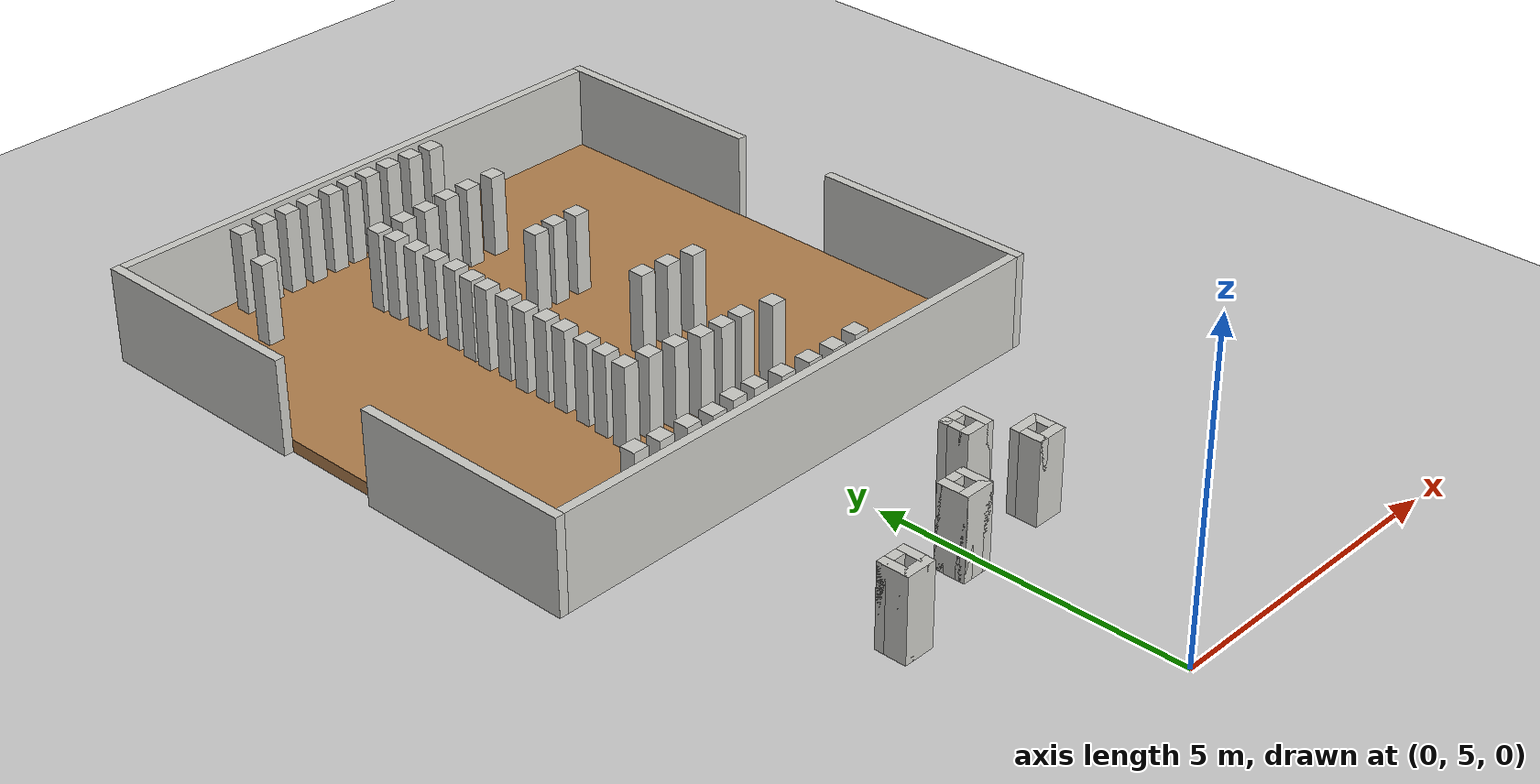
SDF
<sdf version="1.6">
 <world name="default">
  <model name="ground_plane">
   <static>1</static>
   <link name="link">
    <collision name="collision">
     <geometry><plane><normal>0 0 1</normal><size>100 100</size></plane></geometry>
     <surface><friction><ode><mu>100</mu><mu2>50</mu2></ode></friction></surface>
    </collision>
    <visual name="visual">
     <cast_shadows>0</cast_shadows>
     <geometry><plane><normal>0 0 1</normal><size>100 100</size></plane></geometry>
     <material>
      <script><uri>file://media/materials/scripts/gazebo.material</uri><name>Gazebo/Grey</name></script>
     </material>
    </visual>
   </link>
  </model>
  <model name="nerve_room_5x5ARENA_straight">
   <pose>0.031546 15.8425 0 0 -0 1.5708</pose>
   <link name="Wall_11">
    <collision name="Wall_11_Collision">
     <geometry><box><size>8.75 0.15 1.5</size></box></geometry>
     <pose>0 0 0.75 0 -0 0</pose>
    </collision>
    <visual name="Wall_11_Visual">
     <pose>0 0 0.75 0 -0 0</pose>
     <geometry><box><size>8.75 0.15 1.5</size></box></geometry>
     <material>
      <script><uri>file://media/materials/scripts/gazebo.material</uri><name>Gazebo/CeilingTiled</name></script>
      <ambient>1 0.764706 0.305882 1</ambient>
     </material>
    </visual>
    <pose>4.4489 -0.000387 0 0 0 -1.5708</pose>
   </link>
   <link name="Wall_13">
    <collision name="Wall_13_Collision">
     <geometry><box><size>8.75 0.15 1.5</size></box></geometry>
     <pose>0 0 0.75 0 -0 0</pose>
    </collision>
    <visual name="Wall_13_Visual">
     <pose>0 0 0.75 0 -0 0</pose>
     <geometry><box><size>8.75 0.15 1.5</size></box></geometry>
     <material>
      <script><uri>file://media/materials/scripts/gazebo.material</uri><name>Gazebo/CeilingTiled</name></script>
      <ambient>1 0.764706 0.305882 1</ambient>
     </material>
    </visual>
    <pose>-4.44913 0.000846 0 0 0 -1.5708</pose>
   </link>
   <link name="Wall_15">
    <collision name="Wall_15_Collision">
     <geometry><box><size>3.65 0.15 1.5</size></box></geometry>
     <pose>0 0 0.75 0 -0 0</pose>
    </collision>
    <visual name="Wall_15_Visual">
     <pose>0 0 0.75 0 -0 0</pose>
     <geometry><box><size>3.65 0.15 1.5</size></box></geometry>
     <material>
      <script><uri>file://media/materials/scripts/gazebo.material</uri><name>Gazebo/CeilingTiled</name></script>
      <ambient>1 0.764706 0.305882 1</ambient>
     </material>
    </visual>
    <pose>2.69939 -4.45071 0 0 -0 0</pose>
   </link>
   <link name="Wall_17">
    <collision name="Wall_17_Collision">
     <geometry><box><size>3.65 0.15 1.5</size></box></geometry>
     <pose>0 0 0.75 0 -0 0</pose>
    </collision>
    <visual name="Wall_17_Visual">
     <pose>0 0 0.75 0 -0 0</pose>
     <geometry><box><size>3.65 0.15 1.5</size></box></geometry>
     <material>
      <script><uri>file://media/materials/scripts/gazebo.material</uri><name>Gazebo/CeilingTiled</name></script>
      <ambient>1 0.764706 0.305882 1</ambient>
     </material>
    </visual>
    <pose>-2.69939 4.45071 0 0 -0 0</pose>
   </link>
   <link name="Wall_19">
    <collision name="Wall_19_Collision">
     <geometry><box><size>3.65 0.15 1.5</size></box></geometry>
     <pose>0 0 0.75 0 -0 0</pose>
    </collision>
    <visual name="Wall_19_Visual">
     <pose>0 0 0.75 0 -0 0</pose>
     <geometry><box><size>3.65 0.15 1.5</size></box></geometry>
     <material>
      <script><uri>file://media/materials/scripts/gazebo.material</uri><name>Gazebo/CeilingTiled</name></script>
      <ambient>1 0.764706 0.305882 1</ambient>
     </material>
    </visual>
    <pose>2.69903 4.44972 0 0 -0 0</pose>
   </link>
   <link name="Wall_21">
    <collision name="Wall_21_Collision">
     <geometry><box><size>3.65 0.15 1.5</size></box></geometry>
     <pose>0 0 0.75 0 -0 0</pose>
    </collision>
    <visual name="Wall_21_Visual">
     <pose>0 0 0.75 0 -0 0</pose>
     <geometry><box><size>3.65 0.15 1.5</size></box></geometry>
     <material>
      <script><uri>file://media/materials/scripts/gazebo.material</uri><name>Gazebo/CeilingTiled</name></script>
      <ambient>1 0.764706 0.305882 1</ambient>
     </material>
    </visual>
    <pose>-2.69904 -4.44976 0 0 -0 0</pose>
   </link>
   <link name="Wall_6">
    <collision name="Wall_6_Collision">
     <geometry><box><size>8.76 8.75 0.2</size></box></geometry>
     <pose>0 0 0.1 0 -0 0</pose>
    </collision>
    <visual name="Wall_6_Visual">
     <pose>0 0 0.1 0 -0 0</pose>
     <geometry><box><size>8.76 8.75 0.2</size></box></geometry>
     <material>
      <script><uri>file://media/materials/scripts/gazebo.material</uri><name>Gazebo/Wood</name></script>
      <ambient>1 0.764706 0.305882 1</ambient>
     </material>
    </visual>
    <pose>0.000265 -0.004129 0 0 -0 1.5708</pose>
   </link>
   <static>1</static>
  </model>
  <model name="nerve_obs_squarepillar_large_clone_9">
   <pose>0.61279 9.10345 0.2 0 -0 0</pose>
   <link name="Wall_31">
    <collision name="Wall_31_Collision">
     <geometry><box><size>0.5 0.15 1.3</size></box></geometry>
     <pose>0 0 0.65 0 -0 0</pose>
    </collision>
    <visual name="Wall_31_Visual">
     <pose>0 0 0.65 0 -0 0</pose>
     <geometry><box><size>0.5 0.15 1.3</size></box></geometry>
     <material>
      <script><uri>file://media/materials/scripts/gazebo.material</uri><name>Gazebo/CeilingTiled</name></script>
      <ambient>1 0.764706 0.305882 1</ambient>
     </material>
    </visual>
    <pose>-0.175 0 0 0 0 -1.5708</pose>
   </link>
   <link name="Wall_32">
    <collision name="Wall_32_Collision">
     <geometry><box><size>0.5 0.15 1.3</size></box></geometry>
     <pose>0 0 0.65 0 -0 0</pose>
    </collision>
    <visual name="Wall_32_Visual">
     <pose>0 0 0.65 0 -0 0</pose>
     <geometry><box><size>0.5 0.15 1.3</size></box></geometry>
     <material>
      <script><uri>file://media/materials/scripts/gazebo.material</uri><name>Gazebo/CeilingTiled</name></script>
      <ambient>1 0.764706 0.305882 1</ambient>
     </material>
    </visual>
    <pose>0 -0.175 0 0 -0 0</pose>
   </link>
   <link name="Wall_33">
    <collision name="Wall_33_Collision">
     <geometry><box><size>0.5 0.15 1.3</size></box></geometry>
     <pose>0 0 0.65 0 -0 0</pose>
    </collision>
    <visual name="Wall_33_Visual">
     <pose>0 0 0.65 0 -0 0</pose>
     <geometry><box><size>0.5 0.15 1.3</size></box></geometry>
     <material>
      <script><uri>file://media/materials/scripts/gazebo.material</uri><name>Gazebo/CeilingTiled</name></script>
      <ambient>1 0.764706 0.305882 1</ambient>
     </material>
    </visual>
    <pose>0.175 0 0 0 -0 1.5708</pose>
   </link>
   <link name="Wall_34">
    <collision name="Wall_34_Collision">
     <geometry><box><size>0.5 0.15 1.3</size></box></geometry>
     <pose>0 0 0.65 0 -0 0</pose>
    </collision>
    <visual name="Wall_34_Visual">
     <pose>0 0 0.65 0 -0 0</pose>
     <geometry><box><size>0.5 0.15 1.3</size></box></geometry>
     <material>
      <script><uri>file://media/materials/scripts/gazebo.material</uri><name>Gazebo/CeilingTiled</name></script>
      <ambient>1 0.764706 0.305882 1</ambient>
     </material>
    </visual>
    <pose>0 0.175 0 0 -0 3.14159</pose>
   </link>
   <static>1</static>
  </model>
  <model name="nerve_obs_squarepillar_large_clone_11">
   <pose>-2.25899 7.64009 0.2 0 -0 0</pose>
   <link name="Wall_31">
    <collision name="Wall_31_Collision">
     <geometry><box><size>0.5 0.15 1.3</size></box></geometry>
     <pose>0 0 0.65 0 -0 0</pose>
    </collision>
    <visual name="Wall_31_Visual">
     <pose>0 0 0.65 0 -0 0</pose>
     <geometry><box><size>0.5 0.15 1.3</size></box></geometry>
     <material>
      <script><uri>file://media/materials/scripts/gazebo.material</uri><name>Gazebo/CeilingTiled</name></script>
      <ambient>1 0.764706 0.305882 1</ambient>
     </material>
    </visual>
    <pose>-0.175 0 0 0 0 -1.5708</pose>
   </link>
   <link name="Wall_32">
    <collision name="Wall_32_Collision">
     <geometry><box><size>0.5 0.15 1.3</size></box></geometry>
     <pose>0 0 0.65 0 -0 0</pose>
    </collision>
    <visual name="Wall_32_Visual">
     <pose>0 0 0.65 0 -0 0</pose>
     <geometry><box><size>0.5 0.15 1.3</size></box></geometry>
     <material>
      <script><uri>file://media/materials/scripts/gazebo.material</uri><name>Gazebo/CeilingTiled</name></script>
      <ambient>1 0.764706 0.305882 1</ambient>
     </material>
    </visual>
    <pose>0 -0.175 0 0 -0 0</pose>
   </link>
   <link name="Wall_33">
    <collision name="Wall_33_Collision">
     <geometry><box><size>0.5 0.15 1.3</size></box></geometry>
     <pose>0 0 0.65 0 -0 0</pose>
    </collision>
    <visual name="Wall_33_Visual">
     <pose>0 0 0.65 0 -0 0</pose>
     <geometry><box><size>0.5 0.15 1.3</size></box></geometry>
     <material>
      <script><uri>file://media/materials/scripts/gazebo.material</uri><name>Gazebo/CeilingTiled</name></script>
      <ambient>1 0.764706 0.305882 1</ambient>
     </material>
    </visual>
    <pose>0.175 0 0 0 -0 1.5708</pose>
   </link>
   <link name="Wall_34">
    <collision name="Wall_34_Collision">
     <geometry><box><size>0.5 0.15 1.3</size></box></geometry>
     <pose>0 0 0.65 0 -0 0</pose>
    </collision>
    <visual name="Wall_34_Visual">
     <pose>0 0 0.65 0 -0 0</pose>
     <geometry><box><size>0.5 0.15 1.3</size></box></geometry>
     <material>
      <script><uri>file://media/materials/scripts/gazebo.material</uri><name>Gazebo/CeilingTiled</name></script>
      <ambient>1 0.764706 0.305882 1</ambient>
     </material>
    </visual>
    <pose>0 0.175 0 0 -0 3.14159</pose>
   </link>
   <static>1</static>
  </model>
  <model name="nerve_obs_squarepillar_large_clone_11_clone_0">
   <pose>1.10673 8.32521 0.2 0 -0 0</pose>
   <link name="Wall_31">
    <collision name="Wall_31_Collision">
     <geometry><box><size>0.5 0.15 1.3</size></box></geometry>
     <pose>0 0 0.65 0 -0 0</pose>
    </collision>
    <visual name="Wall_31_Visual">
     <pose>0 0 0.65 0 -0 0</pose>
     <geometry><box><size>0.5 0.15 1.3</size></box></geometry>
     <material>
      <script><uri>file://media/materials/scripts/gazebo.material</uri><name>Gazebo/CeilingTiled</name></script>
      <ambient>1 0.764706 0.305882 1</ambient>
     </material>
    </visual>
    <pose>-0.175 0 0 0 0 -1.5708</pose>
   </link>
   <link name="Wall_32">
    <collision name="Wall_32_Collision">
     <geometry><box><size>0.5 0.15 1.3</size></box></geometry>
     <pose>0 0 0.65 0 -0 0</pose>
    </collision>
    <visual name="Wall_32_Visual">
     <pose>0 0 0.65 0 -0 0</pose>
     <geometry><box><size>0.5 0.15 1.3</size></box></geometry>
     <material>
      <script><uri>file://media/materials/scripts/gazebo.material</uri><name>Gazebo/CeilingTiled</name></script>
      <ambient>1 0.764706 0.305882 1</ambient>
     </material>
    </visual>
    <pose>0 -0.175 0 0 -0 0</pose>
   </link>
   <link name="Wall_33">
    <collision name="Wall_33_Collision">
     <geometry><box><size>0.5 0.15 1.3</size></box></geometry>
     <pose>0 0 0.65 0 -0 0</pose>
    </collision>
    <visual name="Wall_33_Visual">
     <pose>0 0 0.65 0 -0 0</pose>
     <geometry><box><size>0.5 0.15 1.3</size></box></geometry>
     <material>
      <script><uri>file://media/materials/scripts/gazebo.material</uri><name>Gazebo/CeilingTiled</name></script>
      <ambient>1 0.764706 0.305882 1</ambient>
     </material>
    </visual>
    <pose>0.175 0 0 0 -0 1.5708</pose>
   </link>
   <link name="Wall_34">
    <collision name="Wall_34_Collision">
     <geometry><box><size>0.5 0.15 1.3</size></box></geometry>
     <pose>0 0 0.65 0 -0 0</pose>
    </collision>
    <visual name="Wall_34_Visual">
     <pose>0 0 0.65 0 -0 0</pose>
     <geometry><box><size>0.5 0.15 1.3</size></box></geometry>
     <material>
      <script><uri>file://media/materials/scripts/gazebo.material</uri><name>Gazebo/CeilingTiled</name></script>
      <ambient>1 0.764706 0.305882 1</ambient>
     </material>
    </visual>
    <pose>0 0.175 0 0 -0 3.14159</pose>
   </link>
   <static>1</static>
  </model>
  <model name="nerve_obs_squarepillar_large_clone_11_clone_1">
   <pose>-0.484465 8.20513 0.2 0 -0 0</pose>
   <link name="Wall_31">
    <collision name="Wall_31_Collision">
     <geometry><box><size>0.5 0.15 1.3</size></box></geometry>
     <pose>0 0 0.65 0 -0 0</pose>
    </collision>
    <visual name="Wall_31_Visual">
     <pose>0 0 0.65 0 -0 0</pose>
     <geometry><box><size>0.5 0.15 1.3</size></box></geometry>
     <material>
      <script><uri>file://media/materials/scripts/gazebo.material</uri><name>Gazebo/CeilingTiled</name></script>
      <ambient>1 0.764706 0.305882 1</ambient>
     </material>
    </visual>
    <pose>-0.175 0 0 0 0 -1.5708</pose>
   </link>
   <link name="Wall_32">
    <collision name="Wall_32_Collision">
     <geometry><box><size>0.5 0.15 1.3</size></box></geometry>
     <pose>0 0 0.65 0 -0 0</pose>
    </collision>
    <visual name="Wall_32_Visual">
     <pose>0 0 0.65 0 -0 0</pose>
     <geometry><box><size>0.5 0.15 1.3</size></box></geometry>
     <material>
      <script><uri>file://media/materials/scripts/gazebo.material</uri><name>Gazebo/CeilingTiled</name></script>
      <ambient>1 0.764706 0.305882 1</ambient>
     </material>
    </visual>
    <pose>0 -0.175 0 0 -0 0</pose>
   </link>
   <link name="Wall_33">
    <collision name="Wall_33_Collision">
     <geometry><box><size>0.5 0.15 1.3</size></box></geometry>
     <pose>0 0 0.65 0 -0 0</pose>
    </collision>
    <visual name="Wall_33_Visual">
     <pose>0 0 0.65 0 -0 0</pose>
     <geometry><box><size>0.5 0.15 1.3</size></box></geometry>
     <material>
      <script><uri>file://media/materials/scripts/gazebo.material</uri><name>Gazebo/CeilingTiled</name></script>
      <ambient>1 0.764706 0.305882 1</ambient>
     </material>
    </visual>
    <pose>0.175 0 0 0 -0 1.5708</pose>
   </link>
   <link name="Wall_34">
    <collision name="Wall_34_Collision">
     <geometry><box><size>0.5 0.15 1.3</size></box></geometry>
     <pose>0 0 0.65 0 -0 0</pose>
    </collision>
    <visual name="Wall_34_Visual">
     <pose>0 0 0.65 0 -0 0</pose>
     <geometry><box><size>0.5 0.15 1.3</size></box></geometry>
     <material>
      <script><uri>file://media/materials/scripts/gazebo.material</uri><name>Gazebo/CeilingTiled</name></script>
      <ambient>1 0.764706 0.305882 1</ambient>
     </material>
    </visual>
    <pose>0 0.175 0 0 -0 3.14159</pose>
   </link>
   <static>1</static>
  </model>
  <model name="nerve_obs_squarepillar_small_clone_41_clone_26">
   <pose>-2.87623 19.0107 0.2 0 -0 0</pose>
   <link name="Wall_40">
    <collision name="Wall_40_Collision">
     <geometry><box><size>0.26 0.25 1.3</size></box></geometry>
     <pose>0 0 0.65 0 -0 0</pose>
    </collision>
    <visual name="Wall_40_Visual">
     <pose>0 0 0.65 0 -0 0</pose>
     <geometry><box><size>0.26 0.25 1.3</size></box></geometry>
     <material>
      <script><uri>file://media/materials/scripts/gazebo.material</uri><name>Gazebo/CeilingTiled</name></script>
      <ambient>1 0.764706 0.305882 1</ambient>
     </material>
    </visual>
   </link>
   <static>1</static>
  </model>
  <model name="nerve_obs_squarepillar_small_clone_41_clone_29">
   <pose>-2.52256 19.9355 0.2 0 -0 0</pose>
   <link name="Wall_40">
    <collision name="Wall_40_Collision">
     <geometry><box><size>0.26 0.25 1.3</size></box></geometry>
     <pose>0 0 0.65 0 -0 0</pose>
    </collision>
    <visual name="Wall_40_Visual">
     <pose>0 0 0.65 0 -0 0</pose>
     <geometry><box><size>0.26 0.25 1.3</size></box></geometry>
     <material>
      <script><uri>file://media/materials/scripts/gazebo.material</uri><name>Gazebo/CeilingTiled</name></script>
      <ambient>1 0.764706 0.305882 1</ambient>
     </material>
    </visual>
   </link>
   <static>1</static>
  </model>
  <model name="nerve_obs_squarepillar_small_clone_41_clone_30">
   <pose>-2.1157 19.9619 0.2 0 -0 0</pose>
   <link name="Wall_40">
    <collision name="Wall_40_Collision">
     <geometry><box><size>0.26 0.25 1.3</size></box></geometry>
     <pose>0 0 0.65 0 -0 0</pose>
    </collision>
    <visual name="Wall_40_Visual">
     <pose>0 0 0.65 0 -0 0</pose>
     <geometry><box><size>0.26 0.25 1.3</size></box></geometry>
     <material>
      <script><uri>file://media/materials/scripts/gazebo.material</uri><name>Gazebo/CeilingTiled</name></script>
      <ambient>1 0.764706 0.305882 1</ambient>
     </material>
    </visual>
   </link>
   <static>1</static>
  </model>
  <model name="nerve_obs_squarepillar_small_clone_41_clone_31">
   <pose>-1.69492 19.9608 0.2 0 -0 0</pose>
   <link name="Wall_40">
    <collision name="Wall_40_Collision">
     <geometry><box><size>0.26 0.25 1.3</size></box></geometry>
     <pose>0 0 0.65 0 -0 0</pose>
    </collision>
    <visual name="Wall_40_Visual">
     <pose>0 0 0.65 0 -0 0</pose>
     <geometry><box><size>0.26 0.25 1.3</size></box></geometry>
     <material>
      <script><uri>file://media/materials/scripts/gazebo.material</uri><name>Gazebo/CeilingTiled</name></script>
      <ambient>1 0.764706 0.305882 1</ambient>
     </material>
    </visual>
   </link>
   <static>1</static>
  </model>
  <model name="nerve_obs_squarepillar_small_clone_41_clone_32">
   <pose>-1.30218 19.9591 0.2 0 -0 0</pose>
   <link name="Wall_40">
    <collision name="Wall_40_Collision">
     <geometry><box><size>0.26 0.25 1.3</size></box></geometry>
     <pose>0 0 0.65 0 -0 0</pose>
    </collision>
    <visual name="Wall_40_Visual">
     <pose>0 0 0.65 0 -0 0</pose>
     <geometry><box><size>0.26 0.25 1.3</size></box></geometry>
     <material>
      <script><uri>file://media/materials/scripts/gazebo.material</uri><name>Gazebo/CeilingTiled</name></script>
      <ambient>1 0.764706 0.305882 1</ambient>
     </material>
    </visual>
   </link>
   <static>1</static>
  </model>
  <model name="nerve_obs_squarepillar_small_clone_41_clone_33">
   <pose>-0.881356 19.9717 0.2 0 -0 0</pose>
   <link name="Wall_40">
    <collision name="Wall_40_Collision">
     <geometry><box><size>0.26 0.25 1.3</size></box></geometry>
     <pose>0 0 0.65 0 -0 0</pose>
    </collision>
    <visual name="Wall_40_Visual">
     <pose>0 0 0.65 0 -0 0</pose>
     <geometry><box><size>0.26 0.25 1.3</size></box></geometry>
     <material>
      <script><uri>file://media/materials/scripts/gazebo.material</uri><name>Gazebo/CeilingTiled</name></script>
      <ambient>1 0.764706 0.305882 1</ambient>
     </material>
    </visual>
   </link>
   <static>1</static>
  </model>
  <model name="nerve_obs_squarepillar_small_clone_41_clone_34">
   <pose>-0.516621 19.9842 0.2 0 -0 0</pose>
   <link name="Wall_40">
    <collision name="Wall_40_Collision">
     <geometry><box><size>0.26 0.25 1.3</size></box></geometry>
     <pose>0 0 0.65 0 -0 0</pose>
    </collision>
    <visual name="Wall_40_Visual">
     <pose>0 0 0.65 0 -0 0</pose>
     <geometry><box><size>0.26 0.25 1.3</size></box></geometry>
     <material>
      <script><uri>file://media/materials/scripts/gazebo.material</uri><name>Gazebo/CeilingTiled</name></script>
      <ambient>1 0.764706 0.305882 1</ambient>
     </material>
    </visual>
   </link>
   <static>1</static>
  </model>
  <model name="nerve_obs_squarepillar_small_clone_41_clone_35">
   <pose>-0.151895 19.9971 0.2 0 -0 0</pose>
   <link name="Wall_40">
    <collision name="Wall_40_Collision">
     <geometry><box><size>0.26 0.25 1.3</size></box></geometry>
     <pose>0 0 0.65 0 -0 0</pose>
    </collision>
    <visual name="Wall_40_Visual">
     <pose>0 0 0.65 0 -0 0</pose>
     <geometry><box><size>0.26 0.25 1.3</size></box></geometry>
     <material>
      <script><uri>file://media/materials/scripts/gazebo.material</uri><name>Gazebo/CeilingTiled</name></script>
      <ambient>1 0.764706 0.305882 1</ambient>
     </material>
    </visual>
   </link>
   <static>1</static>
  </model>
  <model name="nerve_obs_squarepillar_small_clone_41_clone_36">
   <pose>0.254913 20.0101 0.2 0 -0 0</pose>
   <link name="Wall_40">
    <collision name="Wall_40_Collision">
     <geometry><box><size>0.26 0.25 1.3</size></box></geometry>
     <pose>0 0 0.65 0 -0 0</pose>
    </collision>
    <visual name="Wall_40_Visual">
     <pose>0 0 0.65 0 -0 0</pose>
     <geometry><box><size>0.26 0.25 1.3</size></box></geometry>
     <material>
      <script><uri>file://media/materials/scripts/gazebo.material</uri><name>Gazebo/CeilingTiled</name></script>
      <ambient>1 0.764706 0.305882 1</ambient>
     </material>
    </visual>
   </link>
   <static>1</static>
  </model>
  <model name="nerve_obs_squarepillar_small_clone_41_clone_37">
   <pose>0.675647 19.9947 0.2 0 -0 0</pose>
   <link name="Wall_40">
    <collision name="Wall_40_Collision">
     <geometry><box><size>0.26 0.25 1.3</size></box></geometry>
     <pose>0 0 0.65 0 -0 0</pose>
    </collision>
    <visual name="Wall_40_Visual">
     <pose>0 0 0.65 0 -0 0</pose>
     <geometry><box><size>0.26 0.25 1.3</size></box></geometry>
     <material>
      <script><uri>file://media/materials/scripts/gazebo.material</uri><name>Gazebo/CeilingTiled</name></script>
      <ambient>1 0.764706 0.305882 1</ambient>
     </material>
    </visual>
   </link>
   <static>1</static>
  </model>
  <model name="nerve_obs_squarepillar_small_clone_41_clone_38">
   <pose>1.06834 19.9792 0.2 0 -0 0</pose>
   <link name="Wall_40">
    <collision name="Wall_40_Collision">
     <geometry><box><size>0.26 0.25 1.3</size></box></geometry>
     <pose>0 0 0.65 0 -0 0</pose>
    </collision>
    <visual name="Wall_40_Visual">
     <pose>0 0 0.65 0 -0 0</pose>
     <geometry><box><size>0.26 0.25 1.3</size></box></geometry>
     <material>
      <script><uri>file://media/materials/scripts/gazebo.material</uri><name>Gazebo/CeilingTiled</name></script>
      <ambient>1 0.764706 0.305882 1</ambient>
     </material>
    </visual>
   </link>
   <static>1</static>
  </model>
  <model name="nerve_obs_squarepillar_small_clone_41_clone_61">
   <pose>-2.70302 11.7743 0.2 0 -0 0</pose>
   <link name="Wall_40">
    <collision name="Wall_40_Collision">
     <geometry><box><size>0.26 0.25 1.3</size></box></geometry>
     <pose>0 0 0.65 0 -0 0</pose>
    </collision>
    <visual name="Wall_40_Visual">
     <pose>0 0 0.65 0 -0 0</pose>
     <geometry><box><size>0.26 0.25 1.3</size></box></geometry>
     <material>
      <script><uri>file://media/materials/scripts/gazebo.material</uri><name>Gazebo/CeilingTiled</name></script>
      <ambient>1 0.764706 0.305882 1</ambient>
     </material>
    </visual>
   </link>
   <static>1</static>
  </model>
  <model name="nerve_obs_squarepillar_small_clone_41_clone_62">
   <pose>-2.28259 11.7309 0.2 0 -0 0</pose>
   <link name="Wall_40">
    <collision name="Wall_40_Collision">
     <geometry><box><size>0.26 0.25 1.3</size></box></geometry>
     <pose>0 0 0.65 0 -0 0</pose>
    </collision>
    <visual name="Wall_40_Visual">
     <pose>0 0 0.65 0 -0 0</pose>
     <geometry><box><size>0.26 0.25 1.3</size></box></geometry>
     <material>
      <script><uri>file://media/materials/scripts/gazebo.material</uri><name>Gazebo/CeilingTiled</name></script>
      <ambient>1 0.764706 0.305882 1</ambient>
     </material>
    </visual>
   </link>
   <static>1</static>
  </model>
  <model name="nerve_obs_squarepillar_small_clone_41_clone_63">
   <pose>-1.82005 11.7011 0.2 0 -0 0</pose>
   <link name="Wall_40">
    <collision name="Wall_40_Collision">
     <geometry><box><size>0.26 0.25 1.3</size></box></geometry>
     <pose>0 0 0.65 0 -0 0</pose>
    </collision>
    <visual name="Wall_40_Visual">
     <pose>0 0 0.65 0 -0 0</pose>
     <geometry><box><size>0.26 0.25 1.3</size></box></geometry>
     <material>
      <script><uri>file://media/materials/scripts/gazebo.material</uri><name>Gazebo/CeilingTiled</name></script>
      <ambient>1 0.764706 0.305882 1</ambient>
     </material>
    </visual>
   </link>
   <static>1</static>
  </model>
  <model name="nerve_obs_squarepillar_small_clone_41_clone_64">
   <pose>-1.3996 11.658 0.2 0 -0 0</pose>
   <link name="Wall_40">
    <collision name="Wall_40_Collision">
     <geometry><box><size>0.26 0.25 1.3</size></box></geometry>
     <pose>0 0 0.65 0 -0 0</pose>
    </collision>
    <visual name="Wall_40_Visual">
     <pose>0 0 0.65 0 -0 0</pose>
     <geometry><box><size>0.26 0.25 1.3</size></box></geometry>
     <material>
      <script><uri>file://media/materials/scripts/gazebo.material</uri><name>Gazebo/CeilingTiled</name></script>
      <ambient>1 0.764706 0.305882 1</ambient>
     </material>
    </visual>
   </link>
   <static>1</static>
  </model>
  <model name="nerve_obs_squarepillar_small_clone_41_clone_65">
   <pose>-0.950379 11.7263 0.2 0 -0 0</pose>
   <link name="Wall_40">
    <collision name="Wall_40_Collision">
     <geometry><box><size>0.26 0.25 1.3</size></box></geometry>
     <pose>0 0 0.65 0 -0 0</pose>
    </collision>
    <visual name="Wall_40_Visual">
     <pose>0 0 0.65 0 -0 0</pose>
     <geometry><box><size>0.26 0.25 1.3</size></box></geometry>
     <material>
      <script><uri>file://media/materials/scripts/gazebo.material</uri><name>Gazebo/CeilingTiled</name></script>
      <ambient>1 0.764706 0.305882 1</ambient>
     </material>
    </visual>
   </link>
   <static>1</static>
  </model>
  <model name="nerve_obs_squarepillar_small_clone_41_clone_66">
   <pose>-0.543823 11.7247 0.2 0 -0 0</pose>
   <link name="Wall_40">
    <collision name="Wall_40_Collision">
     <geometry><box><size>0.26 0.25 1.3</size></box></geometry>
     <pose>0 0 0.65 0 -0 0</pose>
    </collision>
    <visual name="Wall_40_Visual">
     <pose>0 0 0.65 0 -0 0</pose>
     <geometry><box><size>0.26 0.25 1.3</size></box></geometry>
     <material>
      <script><uri>file://media/materials/scripts/gazebo.material</uri><name>Gazebo/CeilingTiled</name></script>
      <ambient>1 0.764706 0.305882 1</ambient>
     </material>
    </visual>
   </link>
   <static>1</static>
  </model>
  <model name="nerve_obs_squarepillar_small_clone_41_clone_67">
   <pose>-0.081385 11.6672 0.2 0 -0 0</pose>
   <link name="Wall_40">
    <collision name="Wall_40_Collision">
     <geometry><box><size>0.26 0.25 1.3</size></box></geometry>
     <pose>0 0 0.65 0 -0 0</pose>
    </collision>
    <visual name="Wall_40_Visual">
     <pose>0 0 0.65 0 -0 0</pose>
     <geometry><box><size>0.26 0.25 1.3</size></box></geometry>
     <material>
      <script><uri>file://media/materials/scripts/gazebo.material</uri><name>Gazebo/CeilingTiled</name></script>
      <ambient>1 0.764706 0.305882 1</ambient>
     </material>
    </visual>
   </link>
   <static>1</static>
  </model>
  <model name="nerve_obs_squarepillar_small_clone_41_clone_68">
   <pose>0.423245 11.6514 0.2 0 -0 0</pose>
   <link name="Wall_40">
    <collision name="Wall_40_Collision">
     <geometry><box><size>0.26 0.25 1.3</size></box></geometry>
     <pose>0 0 0.65 0 -0 0</pose>
    </collision>
    <visual name="Wall_40_Visual">
     <pose>0 0 0.65 0 -0 0</pose>
     <geometry><box><size>0.26 0.25 1.3</size></box></geometry>
     <material>
      <script><uri>file://media/materials/scripts/gazebo.material</uri><name>Gazebo/CeilingTiled</name></script>
      <ambient>1 0.764706 0.305882 1</ambient>
     </material>
    </visual>
   </link>
   <static>1</static>
  </model>
  <model name="nerve_obs_squarepillar_small_clone_41_clone_69">
   <pose>0.885823 11.6358 0.2 0 -0 0</pose>
   <link name="Wall_40">
    <collision name="Wall_40_Collision">
     <geometry><box><size>0.26 0.25 1.3</size></box></geometry>
     <pose>0 0 0.65 0 -0 0</pose>
    </collision>
    <visual name="Wall_40_Visual">
     <pose>0 0 0.65 0 -0 0</pose>
     <geometry><box><size>0.26 0.25 1.3</size></box></geometry>
     <material>
      <script><uri>file://media/materials/scripts/gazebo.material</uri><name>Gazebo/CeilingTiled</name></script>
      <ambient>1 0.764706 0.305882 1</ambient>
     </material>
    </visual>
   </link>
   <static>1</static>
  </model>
  <model name="nerve_obs_squarepillar_small_clone_41_clone_70">
   <pose>1.37666 11.6761 0.2 0 -0 0</pose>
   <link name="Wall_40">
    <collision name="Wall_40_Collision">
     <geometry><box><size>0.26 0.25 1.3</size></box></geometry>
     <pose>0 0 0.65 0 -0 0</pose>
    </collision>
    <visual name="Wall_40_Visual">
     <pose>0 0 0.65 0 -0 0</pose>
     <geometry><box><size>0.26 0.25 1.3</size></box></geometry>
     <material>
      <script><uri>file://media/materials/scripts/gazebo.material</uri><name>Gazebo/CeilingTiled</name></script>
      <ambient>1 0.764706 0.305882 1</ambient>
     </material>
    </visual>
   </link>
   <static>1</static>
  </model>
  <model name="nerve_obs_squarepillar_small_clone_41_clone_78">
   <pose>-1.12896 16.9287 0.2 0 -0 0</pose>
   <link name="Wall_40">
    <collision name="Wall_40_Collision">
     <geometry><box><size>0.26 0.25 1.3</size></box></geometry>
     <pose>0 0 0.65 0 -0 0</pose>
    </collision>
    <visual name="Wall_40_Visual">
     <pose>0 0 0.65 0 -0 0</pose>
     <geometry><box><size>0.26 0.25 1.3</size></box></geometry>
     <material>
      <script><uri>file://media/materials/scripts/gazebo.material</uri><name>Gazebo/CeilingTiled</name></script>
      <ambient>1 0.764706 0.305882 1</ambient>
     </material>
    </visual>
   </link>
   <static>1</static>
  </model>
  <model name="nerve_obs_squarepillar_small_clone_41_clone_79">
   <pose>-1.12755 17.3495 0.2 0 -0 0</pose>
   <link name="Wall_40">
    <collision name="Wall_40_Collision">
     <geometry><box><size>0.26 0.25 1.3</size></box></geometry>
     <pose>0 0 0.65 0 -0 0</pose>
    </collision>
    <visual name="Wall_40_Visual">
     <pose>0 0 0.65 0 -0 0</pose>
     <geometry><box><size>0.26 0.25 1.3</size></box></geometry>
     <material>
      <script><uri>file://media/materials/scripts/gazebo.material</uri><name>Gazebo/CeilingTiled</name></script>
      <ambient>1 0.764706 0.305882 1</ambient>
     </material>
    </visual>
   </link>
   <static>1</static>
  </model>
  <model name="nerve_obs_squarepillar_small_clone_41_clone_80">
   <pose>-1.14021 17.7562 0.2 0 -0 0</pose>
   <link name="Wall_40">
    <collision name="Wall_40_Collision">
     <geometry><box><size>0.26 0.25 1.3</size></box></geometry>
     <pose>0 0 0.65 0 -0 0</pose>
    </collision>
    <visual name="Wall_40_Visual">
     <pose>0 0 0.65 0 -0 0</pose>
     <geometry><box><size>0.26 0.25 1.3</size></box></geometry>
     <material>
      <script><uri>file://media/materials/scripts/gazebo.material</uri><name>Gazebo/CeilingTiled</name></script>
      <ambient>1 0.764706 0.305882 1</ambient>
     </material>
    </visual>
   </link>
   <static>1</static>
  </model>
  <model name="nerve_obs_squarepillar_small_clone_41_clone_81">
   <pose>-1.13874 18.191 0.2 0 -0 0</pose>
   <link name="Wall_40">
    <collision name="Wall_40_Collision">
     <geometry><box><size>0.26 0.25 1.3</size></box></geometry>
     <pose>0 0 0.65 0 -0 0</pose>
    </collision>
    <visual name="Wall_40_Visual">
     <pose>0 0 0.65 0 -0 0</pose>
     <geometry><box><size>0.26 0.25 1.3</size></box></geometry>
     <material>
      <script><uri>file://media/materials/scripts/gazebo.material</uri><name>Gazebo/CeilingTiled</name></script>
      <ambient>1 0.764706 0.305882 1</ambient>
     </material>
    </visual>
   </link>
   <static>1</static>
  </model>
  <model name="nerve_obs_squarepillar_small_clone_41_clone_82">
   <pose>-1.15159 18.5418 0.2 0 -0 0</pose>
   <link name="Wall_40">
    <collision name="Wall_40_Collision">
     <geometry><box><size>0.26 0.25 1.3</size></box></geometry>
     <pose>0 0 0.65 0 -0 0</pose>
    </collision>
    <visual name="Wall_40_Visual">
     <pose>0 0 0.65 0 -0 0</pose>
     <geometry><box><size>0.26 0.25 1.3</size></box></geometry>
     <material>
      <script><uri>file://media/materials/scripts/gazebo.material</uri><name>Gazebo/CeilingTiled</name></script>
      <ambient>1 0.764706 0.305882 1</ambient>
     </material>
    </visual>
   </link>
   <static>1</static>
  </model>
  <model name="nerve_obs_squarepillar_small_clone_41_clone_83">
   <pose>-0.702786 18.5403 0.2 0 -0 0</pose>
   <link name="Wall_40">
    <collision name="Wall_40_Collision">
     <geometry><box><size>0.26 0.25 1.3</size></box></geometry>
     <pose>0 0 0.65 0 -0 0</pose>
    </collision>
    <visual name="Wall_40_Visual">
     <pose>0 0 0.65 0 -0 0</pose>
     <geometry><box><size>0.26 0.25 1.3</size></box></geometry>
     <material>
      <script><uri>file://media/materials/scripts/gazebo.material</uri><name>Gazebo/CeilingTiled</name></script>
      <ambient>1 0.764706 0.305882 1</ambient>
     </material>
    </visual>
   </link>
   <static>1</static>
  </model>
  <model name="nerve_obs_squarepillar_small_clone_41_clone_84">
   <pose>-0.267961 18.5529 0.2 0 -0 0</pose>
   <link name="Wall_40">
    <collision name="Wall_40_Collision">
     <geometry><box><size>0.26 0.25 1.3</size></box></geometry>
     <pose>0 0 0.65 0 -0 0</pose>
    </collision>
    <visual name="Wall_40_Visual">
     <pose>0 0 0.65 0 -0 0</pose>
     <geometry><box><size>0.26 0.25 1.3</size></box></geometry>
     <material>
      <script><uri>file://media/materials/scripts/gazebo.material</uri><name>Gazebo/CeilingTiled</name></script>
      <ambient>1 0.764706 0.305882 1</ambient>
     </material>
    </visual>
   </link>
   <static>1</static>
  </model>
  <model name="nerve_obs_squarepillar_small_clone_41_clone_85">
   <pose>0.181038 18.6077 0.2 0 -0 0</pose>
   <link name="Wall_40">
    <collision name="Wall_40_Collision">
     <geometry><box><size>0.26 0.25 1.3</size></box></geometry>
     <pose>0 0 0.65 0 -0 0</pose>
    </collision>
    <visual name="Wall_40_Visual">
     <pose>0 0 0.65 0 -0 0</pose>
     <geometry><box><size>0.26 0.25 1.3</size></box></geometry>
     <material>
      <script><uri>file://media/materials/scripts/gazebo.material</uri><name>Gazebo/CeilingTiled</name></script>
      <ambient>1 0.764706 0.305882 1</ambient>
     </material>
    </visual>
   </link>
   <static>1</static>
  </model>
  <model name="nerve_obs_squarepillar_small_clone_41_clone_86">
   <pose>0.601816 18.62 0.2 0 -0 0</pose>
   <link name="Wall_40">
    <collision name="Wall_40_Collision">
     <geometry><box><size>0.26 0.25 1.3</size></box></geometry>
     <pose>0 0 0.65 0 -0 0</pose>
    </collision>
    <visual name="Wall_40_Visual">
     <pose>0 0 0.65 0 -0 0</pose>
     <geometry><box><size>0.26 0.25 1.3</size></box></geometry>
     <material>
      <script><uri>file://media/materials/scripts/gazebo.material</uri><name>Gazebo/CeilingTiled</name></script>
      <ambient>1 0.764706 0.305882 1</ambient>
     </material>
    </visual>
   </link>
   <static>1</static>
  </model>
  <model name="nerve_obs_squarepillar_small_clone_41_clone_87">
   <pose>1.09269 18.6186 0.2 0 -0 0</pose>
   <link name="Wall_40">
    <collision name="Wall_40_Collision">
     <geometry><box><size>0.26 0.25 1.3</size></box></geometry>
     <pose>0 0 0.65 0 -0 0</pose>
    </collision>
    <visual name="Wall_40_Visual">
     <pose>0 0 0.65 0 -0 0</pose>
     <geometry><box><size>0.26 0.25 1.3</size></box></geometry>
     <material>
      <script><uri>file://media/materials/scripts/gazebo.material</uri><name>Gazebo/CeilingTiled</name></script>
      <ambient>1 0.764706 0.305882 1</ambient>
     </material>
    </visual>
   </link>
   <static>1</static>
  </model>
  <model name="nerve_obs_squarepillar_small_clone_41_clone_89">
   <pose>-1.1724 16.5363 0.2 0 -0 0</pose>
   <link name="Wall_40">
    <collision name="Wall_40_Collision">
     <geometry><box><size>0.26 0.25 1.3</size></box></geometry>
     <pose>0 0 0.65 0 -0 0</pose>
    </collision>
    <visual name="Wall_40_Visual">
     <pose>0 0 0.65 0 -0 0</pose>
     <geometry><box><size>0.26 0.25 1.3</size></box></geometry>
     <material>
      <script><uri>file://media/materials/scripts/gazebo.material</uri><name>Gazebo/CeilingTiled</name></script>
      <ambient>1 0.764706 0.305882 1</ambient>
     </material>
    </visual>
   </link>
   <static>1</static>
  </model>
  <model name="nerve_obs_squarepillar_small_clone_41_clone_90">
   <pose>-1.20159 16.1996 0.2 0 -0 0</pose>
   <link name="Wall_40">
    <collision name="Wall_40_Collision">
     <geometry><box><size>0.26 0.25 1.3</size></box></geometry>
     <pose>0 0 0.65 0 -0 0</pose>
    </collision>
    <visual name="Wall_40_Visual">
     <pose>0 0 0.65 0 -0 0</pose>
     <geometry><box><size>0.26 0.25 1.3</size></box></geometry>
     <material>
      <script><uri>file://media/materials/scripts/gazebo.material</uri><name>Gazebo/CeilingTiled</name></script>
      <ambient>1 0.764706 0.305882 1</ambient>
     </material>
    </visual>
   </link>
   <static>1</static>
  </model>
  <model name="nerve_obs_squarepillar_small_clone_41_clone_91">
   <pose>-1.18898 15.7788 0.2 0 -0 0</pose>
   <link name="Wall_40">
    <collision name="Wall_40_Collision">
     <geometry><box><size>0.26 0.25 1.3</size></box></geometry>
     <pose>0 0 0.65 0 -0 0</pose>
    </collision>
    <visual name="Wall_40_Visual">
     <pose>0 0 0.65 0 -0 0</pose>
     <geometry><box><size>0.26 0.25 1.3</size></box></geometry>
     <material>
      <script><uri>file://media/materials/scripts/gazebo.material</uri><name>Gazebo/CeilingTiled</name></script>
      <ambient>1 0.764706 0.305882 1</ambient>
     </material>
    </visual>
   </link>
   <static>1</static>
  </model>
  <model name="nerve_obs_squarepillar_small_clone_41_clone_92">
   <pose>-1.24644 15.3723 0.2 0 -0 0</pose>
   <link name="Wall_40">
    <collision name="Wall_40_Collision">
     <geometry><box><size>0.26 0.25 1.3</size></box></geometry>
     <pose>0 0 0.65 0 -0 0</pose>
    </collision>
    <visual name="Wall_40_Visual">
     <pose>0 0 0.65 0 -0 0</pose>
     <geometry><box><size>0.26 0.25 1.3</size></box></geometry>
     <material>
      <script><uri>file://media/materials/scripts/gazebo.material</uri><name>Gazebo/CeilingTiled</name></script>
      <ambient>1 0.764706 0.305882 1</ambient>
     </material>
    </visual>
   </link>
   <static>1</static>
  </model>
  <model name="nerve_obs_squarepillar_small_clone_41_clone_93">
   <pose>-1.21971 14.9795 0.2 0 -0 0</pose>
   <link name="Wall_40">
    <collision name="Wall_40_Collision">
     <geometry><box><size>0.26 0.25 1.3</size></box></geometry>
     <pose>0 0 0.65 0 -0 0</pose>
    </collision>
    <visual name="Wall_40_Visual">
     <pose>0 0 0.65 0 -0 0</pose>
     <geometry><box><size>0.26 0.25 1.3</size></box></geometry>
     <material>
      <script><uri>file://media/materials/scripts/gazebo.material</uri><name>Gazebo/CeilingTiled</name></script>
      <ambient>1 0.764706 0.305882 1</ambient>
     </material>
    </visual>
   </link>
   <static>1</static>
  </model>
  <model name="nerve_obs_squarepillar_small_clone_41_clone_94">
   <pose>-1.23501 14.601 0.2 0 -0 0</pose>
   <link name="Wall_40">
    <collision name="Wall_40_Collision">
     <geometry><box><size>0.26 0.25 1.3</size></box></geometry>
     <pose>0 0 0.65 0 -0 0</pose>
    </collision>
    <visual name="Wall_40_Visual">
     <pose>0 0 0.65 0 -0 0</pose>
     <geometry><box><size>0.26 0.25 1.3</size></box></geometry>
     <material>
      <script><uri>file://media/materials/scripts/gazebo.material</uri><name>Gazebo/CeilingTiled</name></script>
      <ambient>1 0.764706 0.305882 1</ambient>
     </material>
    </visual>
   </link>
   <static>1</static>
  </model>
  <model name="nerve_obs_squarepillar_small_clone_41_clone_95">
   <pose>-1.2646 14.1385 0.2 0 -0 0</pose>
   <link name="Wall_40">
    <collision name="Wall_40_Collision">
     <geometry><box><size>0.26 0.25 1.3</size></box></geometry>
     <pose>0 0 0.65 0 -0 0</pose>
    </collision>
    <visual name="Wall_40_Visual">
     <pose>0 0 0.65 0 -0 0</pose>
     <geometry><box><size>0.26 0.25 1.3</size></box></geometry>
     <material>
      <script><uri>file://media/materials/scripts/gazebo.material</uri><name>Gazebo/CeilingTiled</name></script>
      <ambient>1 0.764706 0.305882 1</ambient>
     </material>
    </visual>
   </link>
   <static>1</static>
  </model>
  <model name="nerve_obs_squarepillar_small_clone_41_clone_96">
   <pose>-1.29398 13.746 0.2 0 -0 0</pose>
   <link name="Wall_40">
    <collision name="Wall_40_Collision">
     <geometry><box><size>0.26 0.25 1.3</size></box></geometry>
     <pose>0 0 0.65 0 -0 0</pose>
    </collision>
    <visual name="Wall_40_Visual">
     <pose>0 0 0.65 0 -0 0</pose>
     <geometry><box><size>0.26 0.25 1.3</size></box></geometry>
     <material>
      <script><uri>file://media/materials/scripts/gazebo.material</uri><name>Gazebo/CeilingTiled</name></script>
      <ambient>1 0.764706 0.305882 1</ambient>
     </material>
    </visual>
   </link>
   <static>1</static>
  </model>
  <model name="nerve_obs_squarepillar_small_clone_41_clone_97">
   <pose>-1.33742 13.3395 0.2 0 -0 0</pose>
   <link name="Wall_40">
    <collision name="Wall_40_Collision">
     <geometry><box><size>0.26 0.25 1.3</size></box></geometry>
     <pose>0 0 0.65 0 -0 0</pose>
    </collision>
    <visual name="Wall_40_Visual">
     <pose>0 0 0.65 0 -0 0</pose>
     <geometry><box><size>0.26 0.25 1.3</size></box></geometry>
     <material>
      <script><uri>file://media/materials/scripts/gazebo.material</uri><name>Gazebo/CeilingTiled</name></script>
      <ambient>1 0.764706 0.305882 1</ambient>
     </material>
    </visual>
   </link>
   <static>1</static>
  </model>
  <model name="nerve_obs_squarepillar_small_clone_41_clone_98">
   <pose>-0.929757 13.2958 0.2 0 -0 0</pose>
   <link name="Wall_40">
    <collision name="Wall_40_Collision">
     <geometry><box><size>0.26 0.25 1.3</size></box></geometry>
     <pose>0 0 0.65 0 -0 0</pose>
    </collision>
    <visual name="Wall_40_Visual">
     <pose>0 0 0.65 0 -0 0</pose>
     <geometry><box><size>0.26 0.25 1.3</size></box></geometry>
     <material>
      <script><uri>file://media/materials/scripts/gazebo.material</uri><name>Gazebo/CeilingTiled</name></script>
      <ambient>1 0.764706 0.305882 1</ambient>
     </material>
    </visual>
   </link>
   <static>1</static>
  </model>
  <model name="nerve_obs_squarepillar_small_clone_41_clone_99">
   <pose>-0.508174 13.2247 0.2 0 -0 0</pose>
   <link name="Wall_40">
    <collision name="Wall_40_Collision">
     <geometry><box><size>0.26 0.25 1.3</size></box></geometry>
     <pose>0 0 0.65 0 -0 0</pose>
    </collision>
    <visual name="Wall_40_Visual">
     <pose>0 0 0.65 0 -0 0</pose>
     <geometry><box><size>0.26 0.25 1.3</size></box></geometry>
     <material>
      <script><uri>file://media/materials/scripts/gazebo.material</uri><name>Gazebo/CeilingTiled</name></script>
      <ambient>1 0.764706 0.305882 1</ambient>
     </material>
    </visual>
   </link>
   <static>1</static>
  </model>
  <model name="nerve_obs_squarepillar_small_clone_41_clone_100">
   <pose>-0.087792 13.1528 0.2 0 -0 0</pose>
   <link name="Wall_40">
    <collision name="Wall_40_Collision">
     <geometry><box><size>0.26 0.25 1.3</size></box></geometry>
     <pose>0 0 0.65 0 -0 0</pose>
    </collision>
    <visual name="Wall_40_Visual">
     <pose>0 0 0.65 0 -0 0</pose>
     <geometry><box><size>0.26 0.25 1.3</size></box></geometry>
     <material>
      <script><uri>file://media/materials/scripts/gazebo.material</uri><name>Gazebo/CeilingTiled</name></script>
      <ambient>1 0.764706 0.305882 1</ambient>
     </material>
    </visual>
   </link>
   <static>1</static>
  </model>
  <model name="nerve_obs_squarepillar_small_clone_41_clone_101">
   <pose>0.290665 13.1238 0.2 0 -0 0</pose>
   <link name="Wall_40">
    <collision name="Wall_40_Collision">
     <geometry><box><size>0.26 0.25 1.3</size></box></geometry>
     <pose>0 0 0.65 0 -0 0</pose>
    </collision>
    <visual name="Wall_40_Visual">
     <pose>0 0 0.65 0 -0 0</pose>
     <geometry><box><size>0.26 0.25 1.3</size></box></geometry>
     <material>
      <script><uri>file://media/materials/scripts/gazebo.material</uri><name>Gazebo/CeilingTiled</name></script>
      <ambient>1 0.764706 0.305882 1</ambient>
     </material>
    </visual>
   </link>
   <static>1</static>
  </model>
  <model name="nerve_obs_squarepillar_small_clone_41_clone_102">
   <pose>0.669222 13.1225 0.2 0 -0 0</pose>
   <link name="Wall_40">
    <collision name="Wall_40_Collision">
     <geometry><box><size>0.26 0.25 1.3</size></box></geometry>
     <pose>0 0 0.65 0 -0 0</pose>
    </collision>
    <visual name="Wall_40_Visual">
     <pose>0 0 0.65 0 -0 0</pose>
     <geometry><box><size>0.26 0.25 1.3</size></box></geometry>
     <material>
      <script><uri>file://media/materials/scripts/gazebo.material</uri><name>Gazebo/CeilingTiled</name></script>
      <ambient>1 0.764706 0.305882 1</ambient>
     </material>
    </visual>
   </link>
   <static>1</static>
  </model>
  <model name="nerve_obs_squarepillar_small_clone_41_clone_103">
   <pose>1.18761 13.0225 0.2 0 -0 0</pose>
   <link name="Wall_40">
    <collision name="Wall_40_Collision">
     <geometry><box><size>0.26 0.25 1.3</size></box></geometry>
     <pose>0 0 0.65 0 -0 0</pose>
    </collision>
    <visual name="Wall_40_Visual">
     <pose>0 0 0.65 0 -0 0</pose>
     <geometry><box><size>0.26 0.25 1.3</size></box></geometry>
     <material>
      <script><uri>file://media/materials/scripts/gazebo.material</uri><name>Gazebo/CeilingTiled</name></script>
      <ambient>1 0.764706 0.305882 1</ambient>
     </material>
    </visual>
   </link>
   <static>1</static>
  </model>
  <model name="nerve_obs_squarepillar_small_clone_41_clone_108">
   <pose>1.44627 14.802 0.2 0 -0 0</pose>
   <link name="Wall_40">
    <collision name="Wall_40_Collision">
     <geometry><box><size>0.26 0.25 1.3</size></box></geometry>
     <pose>0 0 0.65 0 -0 0</pose>
    </collision>
    <visual name="Wall_40_Visual">
     <pose>0 0 0.65 0 -0 0</pose>
     <geometry><box><size>0.26 0.25 1.3</size></box></geometry>
     <material>
      <script><uri>file://media/materials/scripts/gazebo.material</uri><name>Gazebo/CeilingTiled</name></script>
      <ambient>1 0.764706 0.305882 1</ambient>
     </material>
    </visual>
   </link>
   <static>1</static>
  </model>
  <model name="nerve_obs_squarepillar_small_clone_41_clone_109">
   <pose>0.997769 14.8597 0.2 0 -0 0</pose>
   <link name="Wall_40">
    <collision name="Wall_40_Collision">
     <geometry><box><size>0.26 0.25 1.3</size></box></geometry>
     <pose>0 0 0.65 0 -0 0</pose>
    </collision>
    <visual name="Wall_40_Visual">
     <pose>0 0 0.65 0 -0 0</pose>
     <geometry><box><size>0.26 0.25 1.3</size></box></geometry>
     <material>
      <script><uri>file://media/materials/scripts/gazebo.material</uri><name>Gazebo/CeilingTiled</name></script>
      <ambient>1 0.764706 0.305882 1</ambient>
     </material>
    </visual>
   </link>
   <static>1</static>
  </model>
  <model name="nerve_obs_squarepillar_small_clone_41_clone_110">
   <pose>0.54926 14.9174 0.2 0 -0 0</pose>
   <link name="Wall_40">
    <collision name="Wall_40_Collision">
     <geometry><box><size>0.26 0.25 1.3</size></box></geometry>
     <pose>0 0 0.65 0 -0 0</pose>
    </collision>
    <visual name="Wall_40_Visual">
     <pose>0 0 0.65 0 -0 0</pose>
     <geometry><box><size>0.26 0.25 1.3</size></box></geometry>
     <material>
      <script><uri>file://media/materials/scripts/gazebo.material</uri><name>Gazebo/CeilingTiled</name></script>
      <ambient>1 0.764706 0.305882 1</ambient>
     </material>
    </visual>
   </link>
   <static>1</static>
  </model>
  <model name="nerve_obs_squarepillar_small_clone_41_clone_111">
   <pose>1.13099 16.8648 0.2 0 -0 0</pose>
   <link name="Wall_40">
    <collision name="Wall_40_Collision">
     <geometry><box><size>0.26 0.25 1.3</size></box></geometry>
     <pose>0 0 0.65 0 -0 0</pose>
    </collision>
    <visual name="Wall_40_Visual">
     <pose>0 0 0.65 0 -0 0</pose>
     <geometry><box><size>0.26 0.25 1.3</size></box></geometry>
     <material>
      <script><uri>file://media/materials/scripts/gazebo.material</uri><name>Gazebo/CeilingTiled</name></script>
      <ambient>1 0.764706 0.305882 1</ambient>
     </material>
    </visual>
   </link>
   <static>1</static>
  </model>
  <model name="nerve_obs_squarepillar_small_clone_41_clone_112">
   <pose>0.710336 16.8803 0.2 0 -0 0</pose>
   <link name="Wall_40">
    <collision name="Wall_40_Collision">
     <geometry><box><size>0.26 0.25 1.3</size></box></geometry>
     <pose>0 0 0.65 0 -0 0</pose>
    </collision>
    <visual name="Wall_40_Visual">
     <pose>0 0 0.65 0 -0 0</pose>
     <geometry><box><size>0.26 0.25 1.3</size></box></geometry>
     <material>
      <script><uri>file://media/materials/scripts/gazebo.material</uri><name>Gazebo/CeilingTiled</name></script>
      <ambient>1 0.764706 0.305882 1</ambient>
     </material>
    </visual>
   </link>
   <static>1</static>
  </model>
  <model name="nerve_obs_squarepillar_small_clone_41_clone_113">
   <pose>0.345676 16.8676 0.2 0 -0 0</pose>
   <link name="Wall_40">
    <collision name="Wall_40_Collision">
     <geometry><box><size>0.26 0.25 1.3</size></box></geometry>
     <pose>0 0 0.65 0 -0 0</pose>
    </collision>
    <visual name="Wall_40_Visual">
     <pose>0 0 0.65 0 -0 0</pose>
     <geometry><box><size>0.26 0.25 1.3</size></box></geometry>
     <material>
      <script><uri>file://media/materials/scripts/gazebo.material</uri><name>Gazebo/CeilingTiled</name></script>
      <ambient>1 0.764706 0.305882 1</ambient>
     </material>
    </visual>
   </link>
   <static>1</static>
  </model>
 </world>
</sdf>
